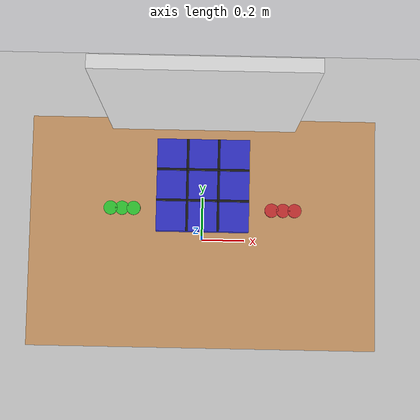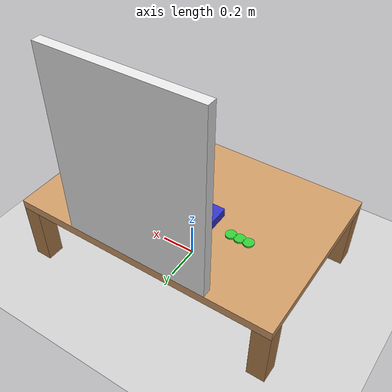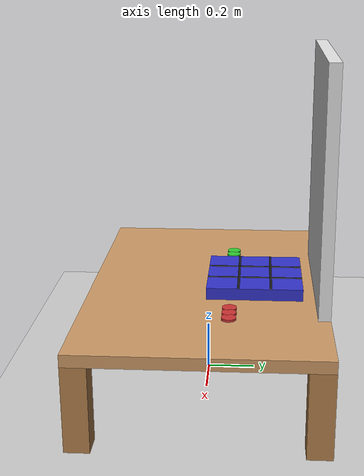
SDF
<sdf version="1.10">
 <world name="arm_tictactoe_NW_poseC1.2">
  <physics name="1ms" type="ignored">
   <max_step_size>0.001</max_step_size>
   <real_time_factor>1</real_time_factor>
   <real_time_update_rate>1000</real_time_update_rate>
  </physics>
  <plugin name="gz::sim::systems::Physics" filename="gz-sim-physics-system"/>
  <plugin name="gz::sim::systems::UserCommands" filename="gz-sim-user-commands-system"/>
  <plugin name="gz::sim::systems::SceneBroadcaster" filename="gz-sim-scene-broadcaster-system"/>
  <gravity>0 0 -9.8000000000000007</gravity>
  <magnetic_field>5.5644999999999998e-06 2.2875799999999999e-05 -4.2388400000000002e-05</magnetic_field>
  <atmosphere type="adiabatic"/>
  <scene>
   <ambient>0.400000006 0.400000006 0.400000006 1</ambient>
   <background>0.699999988 0.699999988 0.699999988 1</background>
   <shadows>true</shadows>
  </scene>
  <model name="ground_plane">
   <static>true</static>
   <link name="link">
    <collision name="collision">
     <geometry><plane><normal>0 0 1</normal><size>100 100</size></plane></geometry>
     <surface>
      <contact><collide_bitmask>65535</collide_bitmask></contact>
      <friction><mu>1.0</mu><mu2>1.0</mu2></friction>
     </surface>
    </collision>
    <visual name="visual">
     <cast_shadows>false</cast_shadows>
     <geometry><plane><normal>0 0 1</normal><size>100 100</size></plane></geometry>
     <material>
      <ambient>0.800000012 0.800000012 0.800000012 1</ambient>
      <diffuse>0.800000012 0.800000012 0.800000012 1</diffuse>
      <specular>0 0 0 1</specular>
     </material>
    </visual>
    <inertial>
     <mass>1</mass>
     <inertia><ixx>1</ixx><ixy>0</ixy><ixz>0</ixz><iyy>1</iyy><iyz>0</iyz><izz>1</izz></inertia>
    </inertial>
   </link>
  </model>
  <model name="study_table">
   <static>true</static>
   <link name="table_link">
    <inertial>
     <mass>50</mass>
     <inertia><ixx>10</ixx><iyy>8</iyy><izz>6</izz><ixy>0</ixy><ixz>0</ixz><iyz>0</iyz></inertia>
    </inertial>
    <visual name="table_top">
     <pose>0 0 0.375 0 0 0</pose>
     <geometry><box><size>1.5 1 0.050000000000000003</size></box></geometry>
     <material>
      <ambient>0.800000012 0.600000024 0.400000006 1</ambient>
      <diffuse>0.800000012 0.600000024 0.400000006 1</diffuse>
     </material>
    </visual>
    <visual name="table_leg1">
     <pose>0.69999999999999996 0.45000000000000001 0.17499999999999999 0 0 0</pose>
     <geometry><box><size>0.10000000000000001 0.10000000000000001 0.34999999999999998</size></box></geometry>
     <material>
      <ambient>0.699999988 0.5 0.300000012 1</ambient>
      <diffuse>0.699999988 0.5 0.300000012 1</diffuse>
     </material>
    </visual>
    <visual name="table_leg2">
     <pose>-0.69999999999999996 0.45000000000000001 0.17499999999999999 0 0 0</pose>
     <geometry><box><size>0.10000000000000001 0.10000000000000001 0.34999999999999998</size></box></geometry>
     <material>
      <ambient>0.699999988 0.5 0.300000012 1</ambient>
      <diffuse>0.699999988 0.5 0.300000012 1</diffuse>
     </material>
    </visual>
    <visual name="table_leg3">
     <pose>0.69999999999999996 -0.45000000000000001 0.17499999999999999 0 0 0</pose>
     <geometry><box><size>0.10000000000000001 0.10000000000000001 0.34999999999999998</size></box></geometry>
     <material>
      <ambient>0.699999988 0.5 0.300000012 1</ambient>
      <diffuse>0.699999988 0.5 0.300000012 1</diffuse>
     </material>
    </visual>
    <visual name="table_leg4">
     <pose>-0.69999999999999996 -0.45000000000000001 0.17499999999999999 0 0 0</pose>
     <geometry><box><size>0.10000000000000001 0.10000000000000001 0.34999999999999998</size></box></geometry>
     <material>
      <ambient>0.699999988 0.5 0.300000012 1</ambient>
      <diffuse>0.699999988 0.5 0.300000012 1</diffuse>
     </material>
    </visual>
    <collision name="table_collision">
     <pose>0 0 0.375 0 0 0</pose>
     <geometry><box><size>1.5 1 0.050000000000000003</size></box></geometry>
    </collision>
    <visual name="wall_visual">
     <pose>0 0.47499999999999998 0.90000000000000002 0 0 0</pose>
     <geometry><box><size>0.80000000000000004 0.050000000000000003 1</size></box></geometry>
     <material>
      <ambient>0.899999976 0.899999976 0.899999976 1</ambient>
      <diffuse>0.899999976 0.899999976 0.899999976 1</diffuse>
     </material>
    </visual>
    <collision name="wall_collision">
     <pose>0 0.47499999999999998 0.90000000000000002 0 0 0</pose>
     <geometry><box><size>0.80000000000000004 0.050000000000000003 1</size></box></geometry>
    </collision>
   </link>
  </model>
  <model name="tictactoe_game">
   <static>true</static>
   <pose>0 0.20000000000000001 0.42499999999999999 0 0 0</pose>
   <link name="board">
    <inertial>
     <mass>2</mass>
     <inertia>
      <ixx>0.10000000000000001</ixx>
      <iyy>0.10000000000000001</iyy>
      <izz>0.10000000000000001</izz>
      <ixy>0</ixy>
      <ixz>0</ixz>
      <iyz>0</iyz>
     </inertia>
    </inertial>
    <visual name="board_visual">
     <geometry><box><size>0.40000000000000002 0.40000000000000002 0.050000000000000003</size></box></geometry>
     <material>
      <ambient>0.200000003 0.200000003 0.800000012 1</ambient>
      <diffuse>0.200000003 0.200000003 0.800000012 1</diffuse>
     </material>
    </visual>
    <visual name="grid_line1">
     <pose>-0.067000000000000004 0 0.025999999999999999 0 0 0</pose>
     <geometry><box><size>0.01 0.40000000000000002 0.002</size></box></geometry>
     <material>
      <ambient>0.100000001 0.100000001 0.100000001 1</ambient>
      <diffuse>0.100000001 0.100000001 0.100000001 1</diffuse>
     </material>
    </visual>
    <visual name="grid_line2">
     <pose>0.067000000000000004 0 0.025999999999999999 0 0 0</pose>
     <geometry><box><size>0.01 0.40000000000000002 0.002</size></box></geometry>
     <material>
      <ambient>0.100000001 0.100000001 0.100000001 1</ambient>
      <diffuse>0.100000001 0.100000001 0.100000001 1</diffuse>
     </material>
    </visual>
    <visual name="grid_line3">
     <pose>0 -0.067000000000000004 0.025999999999999999 0 0 0</pose>
     <geometry><box><size>0.40000000000000002 0.01 0.002</size></box></geometry>
     <material>
      <ambient>0.100000001 0.100000001 0.100000001 1</ambient>
      <diffuse>0.100000001 0.100000001 0.100000001 1</diffuse>
     </material>
    </visual>
    <visual name="grid_line4">
     <pose>0 0.067000000000000004 0.025999999999999999 0 0 0</pose>
     <geometry><box><size>0.40000000000000002 0.01 0.002</size></box></geometry>
     <material>
      <ambient>0.100000001 0.100000001 0.100000001 1</ambient>
      <diffuse>0.100000001 0.100000001 0.100000001 1</diffuse>
     </material>
    </visual>
    <collision name="board_collision">
     <geometry><box><size>0.40000000000000002 0.40000000000000002 0.050000000000000003</size></box></geometry>
    </collision>
   </link>
   <link name="x_piece_1">
    <pose>0.29999999999999999 -0.10000000000000001 -0.020000000000000018 0 0 0</pose>
    <inertial>
     <mass>0.10000000000000001</mass>
     <inertia><ixx>0.001</ixx><iyy>0.001</iyy><izz>0.001</izz><ixy>0</ixy><ixz>0</ixz><iyz>0</iyz></inertia>
    </inertial>
    <visual name="x_visual_1">
     <geometry><cylinder><radius>0.029999999999999999</radius><length>0.01</length></cylinder></geometry>
     <material>
      <ambient>0.800000012 0.200000003 0.200000003 1</ambient>
      <diffuse>0.800000012 0.200000003 0.200000003 1</diffuse>
     </material>
    </visual>
    <collision name="x_collision_1">
     <geometry><cylinder><radius>0.029999999999999999</radius><length>0.01</length></cylinder></geometry>
    </collision>
   </link>
   <link name="x_piece_2">
    <pose>0.34999999999999998 -0.10000000000000001 -0.020000000000000018 0 0 0</pose>
    <inertial>
     <mass>0.10000000000000001</mass>
     <inertia><ixx>0.001</ixx><iyy>0.001</iyy><izz>0.001</izz><ixy>0</ixy><ixz>0</ixz><iyz>0</iyz></inertia>
    </inertial>
    <visual name="x_visual_2">
     <geometry><cylinder><radius>0.029999999999999999</radius><length>0.01</length></cylinder></geometry>
     <material>
      <ambient>0.800000012 0.200000003 0.200000003 1</ambient>
      <diffuse>0.800000012 0.200000003 0.200000003 1</diffuse>
     </material>
    </visual>
    <collision name="x_collision_2">
     <geometry><cylinder><radius>0.029999999999999999</radius><length>0.01</length></cylinder></geometry>
    </collision>
   </link>
   <link name="x_piece_3">
    <pose>0.40000000000000002 -0.10000000000000001 -0.020000000000000018 0 0 0</pose>
    <inertial>
     <mass>0.10000000000000001</mass>
     <inertia><ixx>0.001</ixx><iyy>0.001</iyy><izz>0.001</izz><ixy>0</ixy><ixz>0</ixz><iyz>0</iyz></inertia>
    </inertial>
    <visual name="x_visual_3">
     <geometry><cylinder><radius>0.029999999999999999</radius><length>0.01</length></cylinder></geometry>
     <material>
      <ambient>0.800000012 0.200000003 0.200000003 1</ambient>
      <diffuse>0.800000012 0.200000003 0.200000003 1</diffuse>
     </material>
    </visual>
    <collision name="x_collision_3">
     <geometry><cylinder><radius>0.029999999999999999</radius><length>0.01</length></cylinder></geometry>
    </collision>
   </link>
   <link name="o_piece_1">
    <pose>-0.29999999999999999 -0.10000000000000001 -0.020000000000000018 0 0 0</pose>
    <inertial>
     <mass>0.10000000000000001</mass>
     <inertia><ixx>0.001</ixx><iyy>0.001</iyy><izz>0.001</izz><ixy>0</ixy><ixz>0</ixz><iyz>0</iyz></inertia>
    </inertial>
    <visual name="o_visual_1">
     <geometry><cylinder><radius>0.029999999999999999</radius><length>0.01</length></cylinder></geometry>
     <material>
      <ambient>0.200000003 0.800000012 0.200000003 1</ambient>
      <diffuse>0.200000003 0.800000012 0.200000003 1</diffuse>
     </material>
    </visual>
    <collision name="o_collision_1">
     <geometry><cylinder><radius>0.029999999999999999</radius><length>0.01</length></cylinder></geometry>
    </collision>
   </link>
   <link name="o_piece_2">
    <pose>-0.34999999999999998 -0.10000000000000001 -0.020000000000000018 0 0 0</pose>
    <inertial>
     <mass>0.10000000000000001</mass>
     <inertia><ixx>0.001</ixx><iyy>0.001</iyy><izz>0.001</izz><ixy>0</ixy><ixz>0</ixz><iyz>0</iyz></inertia>
    </inertial>
    <visual name="o_visual_2">
     <geometry><cylinder><radius>0.029999999999999999</radius><length>0.01</length></cylinder></geometry>
     <material>
      <ambient>0.200000003 0.800000012 0.200000003 1</ambient>
      <diffuse>0.200000003 0.800000012 0.200000003 1</diffuse>
     </material>
    </visual>
    <collision name="o_collision_2">
     <geometry><cylinder><radius>0.029999999999999999</radius><length>0.01</length></cylinder></geometry>
    </collision>
   </link>
   <link name="o_piece_3">
    <pose>-0.40000000000000002 -0.10000000000000001 -0.020000000000000018 0 0 0</pose>
    <inertial>
     <mass>0.10000000000000001</mass>
     <inertia><ixx>0.001</ixx><iyy>0.001</iyy><izz>0.001</izz><ixy>0</ixy><ixz>0</ixz><iyz>0</iyz></inertia>
    </inertial>
    <visual name="o_visual_3">
     <geometry><cylinder><radius>0.029999999999999999</radius><length>0.01</length></cylinder></geometry>
     <material>
      <ambient>0.200000003 0.800000012 0.200000003 1</ambient>
      <diffuse>0.200000003 0.800000012 0.200000003 1</diffuse>
     </material>
    </visual>
    <collision name="o_collision_3">
     <geometry><cylinder><radius>0.029999999999999999</radius><length>0.01</length></cylinder></geometry>
    </collision>
   </link>
  </model>
  <light name="sun" type="directional">
   <pose>0 0 10 0 0 0</pose>
   <intensity>1</intensity>
   <direction>-0.5 0.10000000000000001 -0.90000000000000002</direction>
   <diffuse>0.800000012 0.800000012 0.800000012 1</diffuse>
   <specular>0.200000003 0.200000003 0.200000003 1</specular>
   <attenuation>
    <range>1000</range>
    <linear>0.0099999997764825821</linear>
    <constant>0.89999997615814209</constant>
    <quadratic>0.0010000000474974513</quadratic>
   </attenuation>
   <spot><inner_angle>0</inner_angle><outer_angle>0</outer_angle><falloff>0</falloff></spot>
  </light>
 </world>
</sdf>
